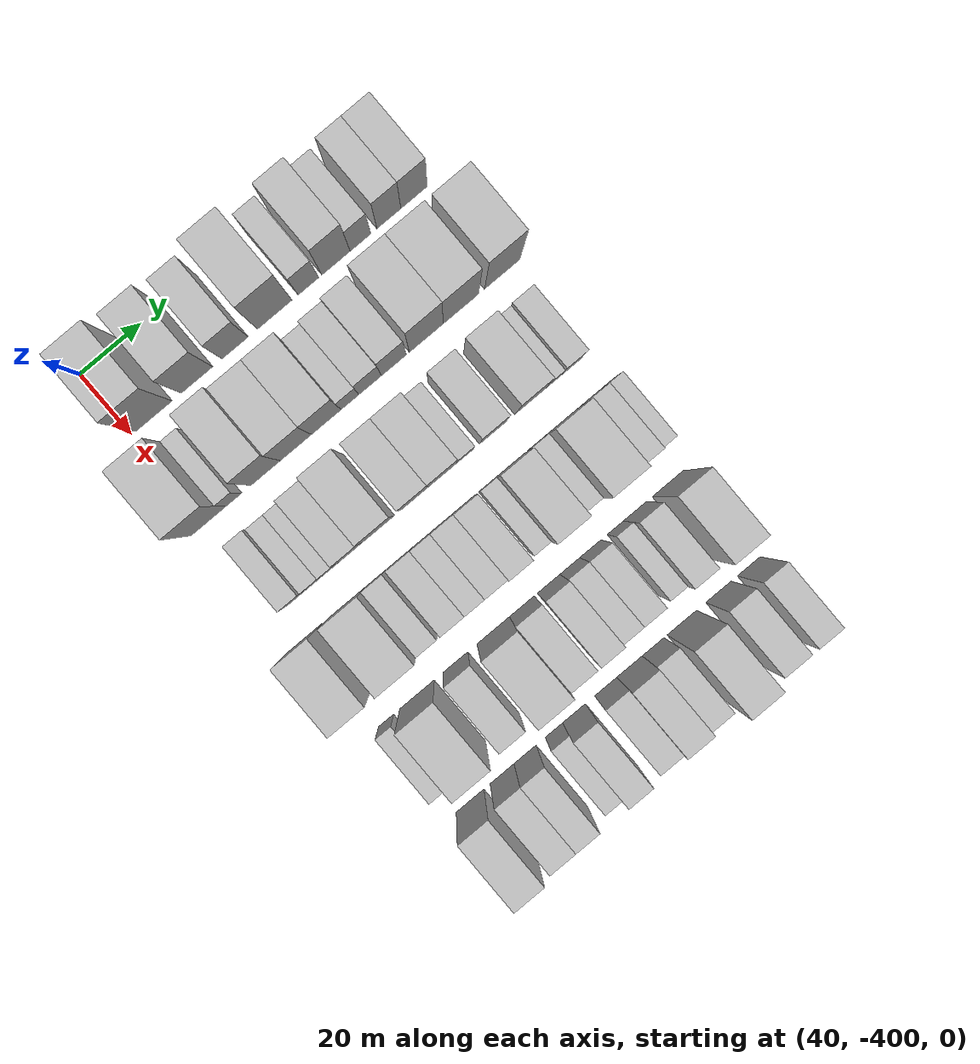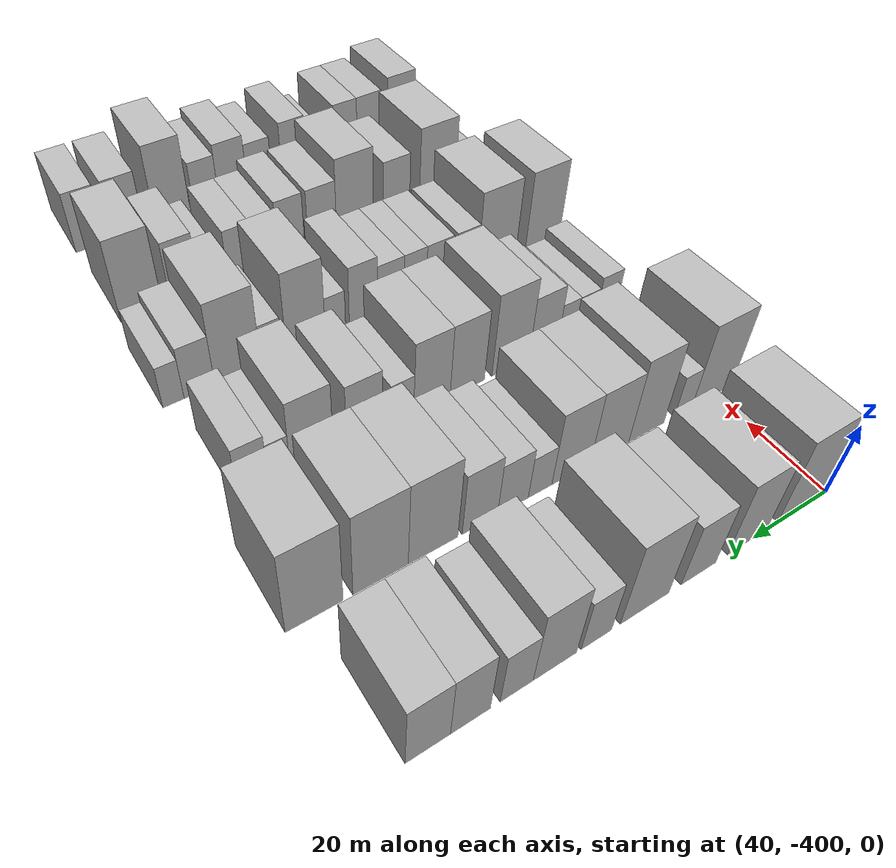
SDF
<sdf version="1.6">
 <world name="default">
  <model name="building_14">
   <static>1</static>
   <pose>50.0000 -392.5506 0 0.000000 0.000000 0.000000</pose>
   <link name="link">
    <pose>0 0 12.00 0 0 0</pose>
    <collision name="collision"><geometry><box><size>20.0000 11.9344 24.0000</size></box></geometry></collision>
    <visual name="visual">
     <cast_shadows>0</cast_shadows>
     <geometry><box><size>20.0000 11.9344 24.0000</size></box></geometry>
     <material>
      <script>
       <uri>model://HANNAS_wall/materials/scripts</uri>
       <uri>model://HANNAS_wall/materials/textures</uri>
       <name>vrc/HANNAS_wall</name>
      </script>
     </material>
    </visual>
   </link>
  </model>
  <model name="building_15">
   <static>1</static>
   <pose>50.0000 -378.4107 0 0.000000 0.000000 0.000000</pose>
   <link name="link">
    <pose>0 0 10.50 0 0 0</pose>
    <collision name="collision"><geometry><box><size>20.0000 10.3454 21.0000</size></box></geometry></collision>
    <visual name="visual">
     <cast_shadows>0</cast_shadows>
     <geometry><box><size>20.0000 10.3454 21.0000</size></box></geometry>
     <material>
      <script>
       <uri>model://HANNAS_wall/materials/scripts</uri>
       <uri>model://HANNAS_wall/materials/textures</uri>
       <name>vrc/HANNAS_wall</name>
      </script>
     </material>
    </visual>
   </link>
  </model>
  <model name="building_16">
   <static>1</static>
   <pose>50.0000 -365.9358 0 0.000000 0.000000 0.000000</pose>
   <link name="link">
    <pose>0 0 9.00 0 0 0</pose>
    <collision name="collision"><geometry><box><size>20.0000 8.6044 18.0000</size></box></geometry></collision>
    <visual name="visual">
     <cast_shadows>0</cast_shadows>
     <geometry><box><size>20.0000 8.6044 18.0000</size></box></geometry>
     <material>
      <script>
       <uri>model://HANNAS_wall/materials/scripts</uri>
       <uri>model://HANNAS_wall/materials/textures</uri>
       <name>vrc/HANNAS_wall</name>
      </script>
     </material>
    </visual>
   </link>
  </model>
  <model name="building_17">
   <static>1</static>
   <pose>50.0000 -352.9570 0 0.000000 0.000000 0.000000</pose>
   <link name="link">
    <pose>0 0 12.00 0 0 0</pose>
    <collision name="collision"><geometry><box><size>20.0000 11.3531 24.0000</size></box></geometry></collision>
    <visual name="visual">
     <cast_shadows>0</cast_shadows>
     <geometry><box><size>20.0000 11.3531 24.0000</size></box></geometry>
     <material>
      <script>
       <uri>model://HANNAS_wall/materials/scripts</uri>
       <uri>model://HANNAS_wall/materials/textures</uri>
       <name>vrc/HANNAS_wall</name>
      </script>
     </material>
    </visual>
   </link>
  </model>
  <model name="building_18">
   <static>1</static>
   <pose>50.0000 -341.8874 0 0.000000 0.000000 0.000000</pose>
   <link name="link">
    <pose>0 0 7.50 0 0 0</pose>
    <collision name="collision"><geometry><box><size>20.0000 6.7861 15.0000</size></box></geometry></collision>
    <visual name="visual">
     <cast_shadows>0</cast_shadows>
     <geometry><box><size>20.0000 6.7861 15.0000</size></box></geometry>
     <material>
      <script>
       <uri>model://HANNAS_wall/materials/scripts</uri>
       <uri>model://HANNAS_wall/materials/textures</uri>
       <name>vrc/HANNAS_wall</name>
      </script>
     </material>
    </visual>
   </link>
  </model>
  <model name="building_19">
   <static>1</static>
   <pose>50.0000 -332.8574 0 0.000000 0.000000 0.000000</pose>
   <link name="link">
    <pose>0 0 10.50 0 0 0</pose>
    <collision name="collision"><geometry><box><size>20.0000 9.2741 21.0000</size></box></geometry></collision>
    <visual name="visual">
     <cast_shadows>0</cast_shadows>
     <geometry><box><size>20.0000 9.2741 21.0000</size></box></geometry>
     <material>
      <script>
       <uri>model://HANNAS_wall/materials/scripts</uri>
       <uri>model://HANNAS_wall/materials/textures</uri>
       <name>vrc/HANNAS_wall</name>
      </script>
     </material>
    </visual>
   </link>
  </model>
  <model name="building_20">
   <static>1</static>
   <pose>50.0000 -324.8339 0 0.000000 0.000000 0.000000</pose>
   <link name="link">
    <pose>0 0 7.50 0 0 0</pose>
    <collision name="collision"><geometry><box><size>20.0000 6.7730 15.0000</size></box></geometry></collision>
    <visual name="visual">
     <cast_shadows>0</cast_shadows>
     <geometry><box><size>20.0000 6.7730 15.0000</size></box></geometry>
     <material>
      <script>
       <uri>model://HANNAS_wall/materials/scripts</uri>
       <uri>model://HANNAS_wall/materials/textures</uri>
       <name>vrc/HANNAS_wall</name>
      </script>
     </material>
    </visual>
   </link>
  </model>
  <model name="building_21">
   <static>1</static>
   <pose>50.0000 -315.5316 0 0.000000 0.000000 0.000000</pose>
   <link name="link">
    <pose>0 0 9.00 0 0 0</pose>
    <collision name="collision"><geometry><box><size>20.0000 7.8315 18.0000</size></box></geometry></collision>
    <visual name="visual">
     <cast_shadows>0</cast_shadows>
     <geometry><box><size>20.0000 7.8315 18.0000</size></box></geometry>
     <material>
      <script>
       <uri>model://HANNAS_wall/materials/scripts</uri>
       <uri>model://HANNAS_wall/materials/textures</uri>
       <name>vrc/HANNAS_wall</name>
      </script>
     </material>
    </visual>
   </link>
  </model>
  <model name="building_22">
   <static>1</static>
   <pose>50.0000 -307.3242 0 0.000000 0.000000 0.000000</pose>
   <link name="link">
    <pose>0 0 9.00 0 0 0</pose>
    <collision name="collision"><geometry><box><size>20.0000 8.5833 18.0000</size></box></geometry></collision>
    <visual name="visual">
     <cast_shadows>0</cast_shadows>
     <geometry><box><size>20.0000 8.5833 18.0000</size></box></geometry>
     <material>
      <script>
       <uri>model://HANNAS_wall/materials/scripts</uri>
       <uri>model://HANNAS_wall/materials/textures</uri>
       <name>vrc/HANNAS_wall</name>
      </script>
     </material>
    </visual>
   </link>
  </model>
  <model name="building_119">
   <static>1</static>
   <pose>79.0000 -398.9051 0 0.000000 0.000000 0.000000</pose>
   <link name="link">
    <pose>0 0 12.00 0 0 0</pose>
    <collision name="collision"><geometry><box><size>20.0000 11.6450 24.0000</size></box></geometry></collision>
    <visual name="visual">
     <cast_shadows>0</cast_shadows>
     <geometry><box><size>20.0000 11.6450 24.0000</size></box></geometry>
     <material>
      <script>
       <uri>model://HANNAS_wall/materials/scripts</uri>
       <uri>model://HANNAS_wall/materials/textures</uri>
       <name>vrc/HANNAS_wall</name>
      </script>
     </material>
    </visual>
   </link>
  </model>
  <model name="building_120">
   <static>1</static>
   <pose>79.0000 -390.5866 0 0.000000 0.000000 0.000000</pose>
   <link name="link">
    <pose>0 0 6.00 0 0 0</pose>
    <collision name="collision"><geometry><box><size>20.0000 4.9921 12.0000</size></box></geometry></collision>
    <visual name="visual">
     <cast_shadows>0</cast_shadows>
     <geometry><box><size>20.0000 4.9921 12.0000</size></box></geometry>
     <material>
      <script>
       <uri>model://HANNAS_wall/materials/scripts</uri>
       <uri>model://HANNAS_wall/materials/textures</uri>
       <name>vrc/HANNAS_wall</name>
      </script>
     </material>
    </visual>
   </link>
  </model>
  <model name="building_121">
   <static>1</static>
   <pose>79.0000 -380.2615 0 0.000000 0.000000 0.000000</pose>
   <link name="link">
    <pose>0 0 12.00 0 0 0</pose>
    <collision name="collision"><geometry><box><size>20.0000 9.6580 24.0000</size></box></geometry></collision>
    <visual name="visual">
     <cast_shadows>0</cast_shadows>
     <geometry><box><size>20.0000 9.6580 24.0000</size></box></geometry>
     <material>
      <script>
       <uri>model://HANNAS_wall/materials/scripts</uri>
       <uri>model://HANNAS_wall/materials/textures</uri>
       <name>vrc/HANNAS_wall</name>
      </script>
     </material>
    </visual>
   </link>
  </model>
  <model name="building_122">
   <static>1</static>
   <pose>79.0000 -370.3288 0 0.000000 0.000000 0.000000</pose>
   <link name="link">
    <pose>0 0 10.50 0 0 0</pose>
    <collision name="collision"><geometry><box><size>20.0000 10.2073 21.0000</size></box></geometry></collision>
    <visual name="visual">
     <cast_shadows>0</cast_shadows>
     <geometry><box><size>20.0000 10.2073 21.0000</size></box></geometry>
     <material>
      <script>
       <uri>model://HANNAS_wall/materials/scripts</uri>
       <uri>model://HANNAS_wall/materials/textures</uri>
       <name>vrc/HANNAS_wall</name>
      </script>
     </material>
    </visual>
   </link>
  </model>
  <model name="building_123">
   <static>1</static>
   <pose>79.0000 -360.3785 0 0.000000 0.000000 0.000000</pose>
   <link name="link">
    <pose>0 0 10.50 0 0 0</pose>
    <collision name="collision"><geometry><box><size>20.0000 9.6934 21.0000</size></box></geometry></collision>
    <visual name="visual">
     <cast_shadows>0</cast_shadows>
     <geometry><box><size>20.0000 9.6934 21.0000</size></box></geometry>
     <material>
      <script>
       <uri>model://HANNAS_wall/materials/scripts</uri>
       <uri>model://HANNAS_wall/materials/textures</uri>
       <name>vrc/HANNAS_wall</name>
      </script>
     </material>
    </visual>
   </link>
  </model>
  <model name="building_124">
   <static>1</static>
   <pose>79.0000 -352.6280 0 0.000000 0.000000 0.000000</pose>
   <link name="link">
    <pose>0 0 6.00 0 0 0</pose>
    <collision name="collision"><geometry><box><size>20.0000 5.8076 12.0000</size></box></geometry></collision>
    <visual name="visual">
     <cast_shadows>0</cast_shadows>
     <geometry><box><size>20.0000 5.8076 12.0000</size></box></geometry>
     <material>
      <script>
       <uri>model://HANNAS_wall/materials/scripts</uri>
       <uri>model://HANNAS_wall/materials/textures</uri>
       <name>vrc/HANNAS_wall</name>
      </script>
     </material>
    </visual>
   </link>
  </model>
  <model name="building_125">
   <static>1</static>
   <pose>79.0000 -346.0457 0 0.000000 0.000000 0.000000</pose>
   <link name="link">
    <pose>0 0 7.50 0 0 0</pose>
    <collision name="collision"><geometry><box><size>20.0000 7.3569 15.0000</size></box></geometry></collision>
    <visual name="visual">
     <cast_shadows>0</cast_shadows>
     <geometry><box><size>20.0000 7.3569 15.0000</size></box></geometry>
     <material>
      <script>
       <uri>model://HANNAS_wall/materials/scripts</uri>
       <uri>model://HANNAS_wall/materials/textures</uri>
       <name>vrc/HANNAS_wall</name>
      </script>
     </material>
    </visual>
   </link>
  </model>
  <model name="building_126">
   <static>1</static>
   <pose>79.0000 -338.2798 0 0.000000 0.000000 0.000000</pose>
   <link name="link">
    <pose>0 0 9.00 0 0 0</pose>
    <collision name="collision"><geometry><box><size>20.0000 8.1748 18.0000</size></box></geometry></collision>
    <visual name="visual">
     <cast_shadows>0</cast_shadows>
     <geometry><box><size>20.0000 8.1748 18.0000</size></box></geometry>
     <material>
      <script>
       <uri>model://HANNAS_wall/materials/scripts</uri>
       <uri>model://HANNAS_wall/materials/textures</uri>
       <name>vrc/HANNAS_wall</name>
      </script>
     </material>
    </visual>
   </link>
  </model>
  <model name="building_127">
   <static>1</static>
   <pose>79.0000 -327.7085 0 0.000000 0.000000 0.000000</pose>
   <link name="link">
    <pose>0 0 12.00 0 0 0</pose>
    <collision name="collision"><geometry><box><size>20.0000 10.9678 24.0000</size></box></geometry></collision>
    <visual name="visual">
     <cast_shadows>0</cast_shadows>
     <geometry><box><size>20.0000 10.9678 24.0000</size></box></geometry>
     <material>
      <script>
       <uri>model://HANNAS_wall/materials/scripts</uri>
       <uri>model://HANNAS_wall/materials/textures</uri>
       <name>vrc/HANNAS_wall</name>
      </script>
     </material>
    </visual>
   </link>
  </model>
  <model name="building_128">
   <static>1</static>
   <pose>79.0000 -316.3937 0 0.000000 0.000000 0.000000</pose>
   <link name="link">
    <pose>0 0 12.00 0 0 0</pose>
    <collision name="collision"><geometry><box><size>20.0000 11.6619 24.0000</size></box></geometry></collision>
    <visual name="visual">
     <cast_shadows>0</cast_shadows>
     <geometry><box><size>20.0000 11.6619 24.0000</size></box></geometry>
     <material>
      <script>
       <uri>model://HANNAS_wall/materials/scripts</uri>
       <uri>model://HANNAS_wall/materials/textures</uri>
       <name>vrc/HANNAS_wall</name>
      </script>
     </material>
    </visual>
   </link>
  </model>
  <model name="building_129">
   <static>1</static>
   <pose>79.0000 -302.7986 0 0.000000 0.000000 0.000000</pose>
   <link name="link">
    <pose>0 0 12.00 0 0 0</pose>
    <collision name="collision"><geometry><box><size>20.0000 11.5283 24.0000</size></box></geometry></collision>
    <visual name="visual">
     <cast_shadows>0</cast_shadows>
     <geometry><box><size>20.0000 11.5283 24.0000</size></box></geometry>
     <material>
      <script>
       <uri>model://HANNAS_wall/materials/scripts</uri>
       <uri>model://HANNAS_wall/materials/textures</uri>
       <name>vrc/HANNAS_wall</name>
      </script>
     </material>
    </visual>
   </link>
  </model>
  <model name="building_230">
   <static>1</static>
   <pose>108.0000 -394.1284 0 0.000000 0.000000 0.000000</pose>
   <link name="link">
    <pose>0 0 7.50 0 0 0</pose>
    <collision name="collision"><geometry><box><size>20.0000 6.0199 15.0000</size></box></geometry></collision>
    <visual name="visual">
     <cast_shadows>0</cast_shadows>
     <geometry><box><size>20.0000 6.0199 15.0000</size></box></geometry>
     <material>
      <script>
       <uri>model://HANNAS_wall/materials/scripts</uri>
       <uri>model://HANNAS_wall/materials/textures</uri>
       <name>vrc/HANNAS_wall</name>
      </script>
     </material>
    </visual>
   </link>
  </model>
  <model name="building_231">
   <static>1</static>
   <pose>108.0000 -388.3992 0 0.000000 0.000000 0.000000</pose>
   <link name="link">
    <pose>0 0 6.00 0 0 0</pose>
    <collision name="collision"><geometry><box><size>20.0000 5.4384 12.0000</size></box></geometry></collision>
    <visual name="visual">
     <cast_shadows>0</cast_shadows>
     <geometry><box><size>20.0000 5.4384 12.0000</size></box></geometry>
     <material>
      <script>
       <uri>model://HANNAS_wall/materials/scripts</uri>
       <uri>model://HANNAS_wall/materials/textures</uri>
       <name>vrc/HANNAS_wall</name>
      </script>
     </material>
    </visual>
   </link>
  </model>
  <model name="building_232">
   <static>1</static>
   <pose>108.0000 -383.0986 0 0.000000 0.000000 0.000000</pose>
   <link name="link">
    <pose>0 0 6.00 0 0 0</pose>
    <collision name="collision"><geometry><box><size>20.0000 5.1628 12.0000</size></box></geometry></collision>
    <visual name="visual">
     <cast_shadows>0</cast_shadows>
     <geometry><box><size>20.0000 5.1628 12.0000</size></box></geometry>
     <material>
      <script>
       <uri>model://HANNAS_wall/materials/scripts</uri>
       <uri>model://HANNAS_wall/materials/textures</uri>
       <name>vrc/HANNAS_wall</name>
      </script>
     </material>
    </visual>
   </link>
  </model>
  <model name="building_233">
   <static>1</static>
   <pose>108.0000 -376.4783 0 0.000000 0.000000 0.000000</pose>
   <link name="link">
    <pose>0 0 9.00 0 0 0</pose>
    <collision name="collision"><geometry><box><size>20.0000 8.0779 18.0000</size></box></geometry></collision>
    <visual name="visual">
     <cast_shadows>0</cast_shadows>
     <geometry><box><size>20.0000 8.0779 18.0000</size></box></geometry>
     <material>
      <script>
       <uri>model://HANNAS_wall/materials/scripts</uri>
       <uri>model://HANNAS_wall/materials/textures</uri>
       <name>vrc/HANNAS_wall</name>
      </script>
     </material>
    </visual>
   </link>
  </model>
  <model name="building_234">
   <static>1</static>
   <pose>108.0000 -367.3872 0 0.000000 0.000000 0.000000</pose>
   <link name="link">
    <pose>0 0 12.00 0 0 0</pose>
    <collision name="collision"><geometry><box><size>20.0000 10.1044 24.0000</size></box></geometry></collision>
    <visual name="visual">
     <cast_shadows>0</cast_shadows>
     <geometry><box><size>20.0000 10.1044 24.0000</size></box></geometry>
     <material>
      <script>
       <uri>model://HANNAS_wall/materials/scripts</uri>
       <uri>model://HANNAS_wall/materials/textures</uri>
       <name>vrc/HANNAS_wall</name>
      </script>
     </material>
    </visual>
   </link>
  </model>
  <model name="building_235">
   <static>1</static>
   <pose>108.0000 -355.8454 0 0.000000 0.000000 0.000000</pose>
   <link name="link">
    <pose>0 0 10.50 0 0 0</pose>
    <collision name="collision"><geometry><box><size>20.0000 8.9792 21.0000</size></box></geometry></collision>
    <visual name="visual">
     <cast_shadows>0</cast_shadows>
     <geometry><box><size>20.0000 8.9792 21.0000</size></box></geometry>
     <material>
      <script>
       <uri>model://HANNAS_wall/materials/scripts</uri>
       <uri>model://HANNAS_wall/materials/textures</uri>
       <name>vrc/HANNAS_wall</name>
      </script>
     </material>
    </visual>
   </link>
  </model>
  <model name="building_236">
   <static>1</static>
   <pose>108.0000 -346.7519 0 0.000000 0.000000 0.000000</pose>
   <link name="link">
    <pose>0 0 10.50 0 0 0</pose>
    <collision name="collision"><geometry><box><size>20.0000 9.2078 21.0000</size></box></geometry></collision>
    <visual name="visual">
     <cast_shadows>0</cast_shadows>
     <geometry><box><size>20.0000 9.2078 21.0000</size></box></geometry>
     <material>
      <script>
       <uri>model://HANNAS_wall/materials/scripts</uri>
       <uri>model://HANNAS_wall/materials/textures</uri>
       <name>vrc/HANNAS_wall</name>
      </script>
     </material>
    </visual>
   </link>
  </model>
  <model name="building_237">
   <static>1</static>
   <pose>108.0000 -339.3486 0 0.000000 0.000000 0.000000</pose>
   <link name="link">
    <pose>0 0 6.00 0 0 0</pose>
    <collision name="collision"><geometry><box><size>20.0000 5.5988 12.0000</size></box></geometry></collision>
    <visual name="visual">
     <cast_shadows>0</cast_shadows>
     <geometry><box><size>20.0000 5.5988 12.0000</size></box></geometry>
     <material>
      <script>
       <uri>model://HANNAS_wall/materials/scripts</uri>
       <uri>model://HANNAS_wall/materials/textures</uri>
       <name>vrc/HANNAS_wall</name>
      </script>
     </material>
    </visual>
   </link>
  </model>
  <model name="building_238">
   <static>1</static>
   <pose>108.0000 -330.2804 0 0.000000 0.000000 0.000000</pose>
   <link name="link">
    <pose>0 0 9.00 0 0 0</pose>
    <collision name="collision"><geometry><box><size>20.0000 8.5376 18.0000</size></box></geometry></collision>
    <visual name="visual">
     <cast_shadows>0</cast_shadows>
     <geometry><box><size>20.0000 8.5376 18.0000</size></box></geometry>
     <material>
      <script>
       <uri>model://HANNAS_wall/materials/scripts</uri>
       <uri>model://HANNAS_wall/materials/textures</uri>
       <name>vrc/HANNAS_wall</name>
      </script>
     </material>
    </visual>
   </link>
  </model>
  <model name="building_239">
   <static>1</static>
   <pose>108.0000 -318.1459 0 0.000000 0.000000 0.000000</pose>
   <link name="link">
    <pose>0 0 10.50 0 0 0</pose>
    <collision name="collision"><geometry><box><size>20.0000 9.7313 21.0000</size></box></geometry></collision>
    <visual name="visual">
     <cast_shadows>0</cast_shadows>
     <geometry><box><size>20.0000 9.7313 21.0000</size></box></geometry>
     <material>
      <script>
       <uri>model://HANNAS_wall/materials/scripts</uri>
       <uri>model://HANNAS_wall/materials/textures</uri>
       <name>vrc/HANNAS_wall</name>
      </script>
     </material>
    </visual>
   </link>
  </model>
  <model name="building_240">
   <static>1</static>
   <pose>108.0000 -310.8722 0 0.000000 0.000000 0.000000</pose>
   <link name="link">
    <pose>0 0 6.00 0 0 0</pose>
    <collision name="collision"><geometry><box><size>20.0000 4.8162 12.0000</size></box></geometry></collision>
    <visual name="visual">
     <cast_shadows>0</cast_shadows>
     <geometry><box><size>20.0000 4.8162 12.0000</size></box></geometry>
     <material>
      <script>
       <uri>model://HANNAS_wall/materials/scripts</uri>
       <uri>model://HANNAS_wall/materials/textures</uri>
       <name>vrc/HANNAS_wall</name>
      </script>
     </material>
    </visual>
   </link>
  </model>
  <model name="building_241">
   <static>1</static>
   <pose>108.0000 -305.1281 0 0.000000 0.000000 0.000000</pose>
   <link name="link">
    <pose>0 0 7.50 0 0 0</pose>
    <collision name="collision"><geometry><box><size>20.0000 6.6720 15.0000</size></box></geometry></collision>
    <visual name="visual">
     <cast_shadows>0</cast_shadows>
     <geometry><box><size>20.0000 6.6720 15.0000</size></box></geometry>
     <material>
      <script>
       <uri>model://HANNAS_wall/materials/scripts</uri>
       <uri>model://HANNAS_wall/materials/textures</uri>
       <name>vrc/HANNAS_wall</name>
      </script>
     </material>
    </visual>
   </link>
  </model>
  <model name="building_341">
   <static>1</static>
   <pose>137.0000 -399.1866 0 0.000000 0.000000 0.000000</pose>
   <link name="link">
    <pose>0 0 12.00 0 0 0</pose>
    <collision name="collision"><geometry><box><size>20.0000 10.7798 24.0000</size></box></geometry></collision>
    <visual name="visual">
     <cast_shadows>0</cast_shadows>
     <geometry><box><size>20.0000 10.7798 24.0000</size></box></geometry>
     <material>
      <script>
       <uri>model://HANNAS_wall/materials/scripts</uri>
       <uri>model://HANNAS_wall/materials/textures</uri>
       <name>vrc/HANNAS_wall</name>
      </script>
     </material>
    </visual>
   </link>
  </model>
  <model name="building_342">
   <static>1</static>
   <pose>137.0000 -385.0255 0 0.000000 0.000000 0.000000</pose>
   <link name="link">
    <pose>0 0 12.00 0 0 0</pose>
    <collision name="collision"><geometry><box><size>20.0000 11.5424 24.0000</size></box></geometry></collision>
    <visual name="visual">
     <cast_shadows>0</cast_shadows>
     <geometry><box><size>20.0000 11.5424 24.0000</size></box></geometry>
     <material>
      <script>
       <uri>model://HANNAS_wall/materials/scripts</uri>
       <uri>model://HANNAS_wall/materials/textures</uri>
       <name>vrc/HANNAS_wall</name>
      </script>
     </material>
    </visual>
   </link>
  </model>
  <model name="building_343">
   <static>1</static>
   <pose>137.0000 -376.0339 0 0.000000 0.000000 0.000000</pose>
   <link name="link">
    <pose>0 0 7.50 0 0 0</pose>
    <collision name="collision"><geometry><box><size>20.0000 6.4409 15.0000</size></box></geometry></collision>
    <visual name="visual">
     <cast_shadows>0</cast_shadows>
     <geometry><box><size>20.0000 6.4409 15.0000</size></box></geometry>
     <material>
      <script>
       <uri>model://HANNAS_wall/materials/scripts</uri>
       <uri>model://HANNAS_wall/materials/textures</uri>
       <name>vrc/HANNAS_wall</name>
      </script>
     </material>
    </visual>
   </link>
  </model>
  <model name="building_344">
   <static>1</static>
   <pose>137.0000 -368.0827 0 0.000000 0.000000 0.000000</pose>
   <link name="link">
    <pose>0 0 7.50 0 0 0</pose>
    <collision name="collision"><geometry><box><size>20.0000 7.4615 15.0000</size></box></geometry></collision>
    <visual name="visual">
     <cast_shadows>0</cast_shadows>
     <geometry><box><size>20.0000 7.4615 15.0000</size></box></geometry>
     <material>
      <script>
       <uri>model://HANNAS_wall/materials/scripts</uri>
       <uri>model://HANNAS_wall/materials/textures</uri>
       <name>vrc/HANNAS_wall</name>
      </script>
     </material>
    </visual>
   </link>
  </model>
  <model name="building_345">
   <static>1</static>
   <pose>137.0000 -361.2381 0 0.000000 0.000000 0.000000</pose>
   <link name="link">
    <pose>0 0 7.50 0 0 0</pose>
    <collision name="collision"><geometry><box><size>20.0000 6.2277 15.0000</size></box></geometry></collision>
    <visual name="visual">
     <cast_shadows>0</cast_shadows>
     <geometry><box><size>20.0000 6.2277 15.0000</size></box></geometry>
     <material>
      <script>
       <uri>model://HANNAS_wall/materials/scripts</uri>
       <uri>model://HANNAS_wall/materials/textures</uri>
       <name>vrc/HANNAS_wall</name>
      </script>
     </material>
    </visual>
   </link>
  </model>
  <model name="building_346">
   <static>1</static>
   <pose>137.0000 -354.5457 0 0.000000 0.000000 0.000000</pose>
   <link name="link">
    <pose>0 0 7.50 0 0 0</pose>
    <collision name="collision"><geometry><box><size>20.0000 7.1572 15.0000</size></box></geometry></collision>
    <visual name="visual">
     <cast_shadows>0</cast_shadows>
     <geometry><box><size>20.0000 7.1572 15.0000</size></box></geometry>
     <material>
      <script>
       <uri>model://HANNAS_wall/materials/scripts</uri>
       <uri>model://HANNAS_wall/materials/textures</uri>
       <name>vrc/HANNAS_wall</name>
      </script>
     </material>
    </visual>
   </link>
  </model>
  <model name="building_347">
   <static>1</static>
   <pose>137.0000 -347.2241 0 0.000000 0.000000 0.000000</pose>
   <link name="link">
    <pose>0 0 9.00 0 0 0</pose>
    <collision name="collision"><geometry><box><size>20.0000 7.4860 18.0000</size></box></geometry></collision>
    <visual name="visual">
     <cast_shadows>0</cast_shadows>
     <geometry><box><size>20.0000 7.4860 18.0000</size></box></geometry>
     <material>
      <script>
       <uri>model://HANNAS_wall/materials/scripts</uri>
       <uri>model://HANNAS_wall/materials/textures</uri>
       <name>vrc/HANNAS_wall</name>
      </script>
     </material>
    </visual>
   </link>
  </model>
  <model name="building_348">
   <static>1</static>
   <pose>137.0000 -339.8704 0 0.000000 0.000000 0.000000</pose>
   <link name="link">
    <pose>0 0 6.00 0 0 0</pose>
    <collision name="collision"><geometry><box><size>20.0000 5.2214 12.0000</size></box></geometry></collision>
    <visual name="visual">
     <cast_shadows>0</cast_shadows>
     <geometry><box><size>20.0000 5.2214 12.0000</size></box></geometry>
     <material>
      <script>
       <uri>model://HANNAS_wall/materials/scripts</uri>
       <uri>model://HANNAS_wall/materials/textures</uri>
       <name>vrc/HANNAS_wall</name>
      </script>
     </material>
    </visual>
   </link>
  </model>
  <model name="building_349">
   <static>1</static>
   <pose>137.0000 -332.3220 0 0.000000 0.000000 0.000000</pose>
   <link name="link">
    <pose>0 0 12.00 0 0 0</pose>
    <collision name="collision"><geometry><box><size>20.0000 9.8754 24.0000</size></box></geometry></collision>
    <visual name="visual">
     <cast_shadows>0</cast_shadows>
     <geometry><box><size>20.0000 9.8754 24.0000</size></box></geometry>
     <material>
      <script>
       <uri>model://HANNAS_wall/materials/scripts</uri>
       <uri>model://HANNAS_wall/materials/textures</uri>
       <name>vrc/HANNAS_wall</name>
      </script>
     </material>
    </visual>
   </link>
  </model>
  <model name="building_350">
   <static>1</static>
   <pose>137.0000 -323.7280 0 0.000000 0.000000 0.000000</pose>
   <link name="link">
    <pose>0 0 6.00 0 0 0</pose>
    <collision name="collision"><geometry><box><size>20.0000 5.3126 12.0000</size></box></geometry></collision>
    <visual name="visual">
     <cast_shadows>0</cast_shadows>
     <geometry><box><size>20.0000 5.3126 12.0000</size></box></geometry>
     <material>
      <script>
       <uri>model://HANNAS_wall/materials/scripts</uri>
       <uri>model://HANNAS_wall/materials/textures</uri>
       <name>vrc/HANNAS_wall</name>
      </script>
     </material>
    </visual>
   </link>
  </model>
  <model name="building_351">
   <static>1</static>
   <pose>137.0000 -315.5828 0 0.000000 0.000000 0.000000</pose>
   <link name="link">
    <pose>0 0 12.00 0 0 0</pose>
    <collision name="collision"><geometry><box><size>20.0000 10.9778 24.0000</size></box></geometry></collision>
    <visual name="visual">
     <cast_shadows>0</cast_shadows>
     <geometry><box><size>20.0000 10.9778 24.0000</size></box></geometry>
     <material>
      <script>
       <uri>model://HANNAS_wall/materials/scripts</uri>
       <uri>model://HANNAS_wall/materials/textures</uri>
       <name>vrc/HANNAS_wall</name>
      </script>
     </material>
    </visual>
   </link>
  </model>
  <model name="building_352">
   <static>1</static>
   <pose>137.0000 -306.5352 0 0.000000 0.000000 0.000000</pose>
   <link name="link">
    <pose>0 0 7.50 0 0 0</pose>
    <collision name="collision"><geometry><box><size>20.0000 7.1174 15.0000</size></box></geometry></collision>
    <visual name="visual">
     <cast_shadows>0</cast_shadows>
     <geometry><box><size>20.0000 7.1174 15.0000</size></box></geometry>
     <material>
      <script>
       <uri>model://HANNAS_wall/materials/scripts</uri>
       <uri>model://HANNAS_wall/materials/textures</uri>
       <name>vrc/HANNAS_wall</name>
      </script>
     </material>
    </visual>
   </link>
  </model>
  <model name="building_353">
   <static>1</static>
   <pose>137.0000 -300.5645 0 0.000000 0.000000 0.000000</pose>
   <link name="link">
    <pose>0 0 6.00 0 0 0</pose>
    <collision name="collision"><geometry><box><size>20.0000 4.8240 12.0000</size></box></geometry></collision>
    <visual name="visual">
     <cast_shadows>0</cast_shadows>
     <geometry><box><size>20.0000 4.8240 12.0000</size></box></geometry>
     <material>
      <script>
       <uri>model://HANNAS_wall/materials/scripts</uri>
       <uri>model://HANNAS_wall/materials/textures</uri>
       <name>vrc/HANNAS_wall</name>
      </script>
     </material>
    </visual>
   </link>
  </model>
  <model name="building_458">
   <static>1</static>
   <pose>166.0000 -397.1398 0 0.000000 0.000000 0.000000</pose>
   <link name="link">
    <pose>0 0 6.00 0 0 0</pose>
    <collision name="collision"><geometry><box><size>20.0000 4.9072 12.0000</size></box></geometry></collision>
    <visual name="visual">
     <cast_shadows>0</cast_shadows>
     <geometry><box><size>20.0000 4.9072 12.0000</size></box></geometry>
     <material>
      <script>
       <uri>model://HANNAS_wall/materials/scripts</uri>
       <uri>model://HANNAS_wall/materials/textures</uri>
       <name>vrc/HANNAS_wall</name>
      </script>
     </material>
    </visual>
   </link>
  </model>
  <model name="building_459">
   <static>1</static>
   <pose>166.0000 -387.0199 0 0.000000 0.000000 0.000000</pose>
   <link name="link">
    <pose>0 0 12.00 0 0 0</pose>
    <collision name="collision"><geometry><box><size>20.0000 11.3327 24.0000</size></box></geometry></collision>
    <visual name="visual">
     <cast_shadows>0</cast_shadows>
     <geometry><box><size>20.0000 11.3327 24.0000</size></box></geometry>
     <material>
      <script>
       <uri>model://HANNAS_wall/materials/scripts</uri>
       <uri>model://HANNAS_wall/materials/textures</uri>
       <name>vrc/HANNAS_wall</name>
      </script>
     </material>
    </visual>
   </link>
  </model>
  <model name="building_460">
   <static>1</static>
   <pose>166.0000 -374.3533 0 0.000000 0.000000 0.000000</pose>
   <link name="link">
    <pose>0 0 9.00 0 0 0</pose>
    <collision name="collision"><geometry><box><size>20.0000 8.0005 18.0000</size></box></geometry></collision>
    <visual name="visual">
     <cast_shadows>0</cast_shadows>
     <geometry><box><size>20.0000 8.0005 18.0000</size></box></geometry>
     <material>
      <script>
       <uri>model://HANNAS_wall/materials/scripts</uri>
       <uri>model://HANNAS_wall/materials/textures</uri>
       <name>vrc/HANNAS_wall</name>
      </script>
     </material>
    </visual>
   </link>
  </model>
  <model name="building_461">
   <static>1</static>
   <pose>166.0000 -362.0020 0 0.000000 0.000000 0.000000</pose>
   <link name="link">
    <pose>0 0 12.00 0 0 0</pose>
    <collision name="collision"><geometry><box><size>20.0000 10.7020 24.0000</size></box></geometry></collision>
    <visual name="visual">
     <cast_shadows>0</cast_shadows>
     <geometry><box><size>20.0000 10.7020 24.0000</size></box></geometry>
     <material>
      <script>
       <uri>model://HANNAS_wall/materials/scripts</uri>
       <uri>model://HANNAS_wall/materials/textures</uri>
       <name>vrc/HANNAS_wall</name>
      </script>
     </material>
    </visual>
   </link>
  </model>
  <model name="building_462">
   <static>1</static>
   <pose>166.0000 -352.6066 0 0.000000 0.000000 0.000000</pose>
   <link name="link">
    <pose>0 0 9.00 0 0 0</pose>
    <collision name="collision"><geometry><box><size>20.0000 8.0889 18.0000</size></box></geometry></collision>
    <visual name="visual">
     <cast_shadows>0</cast_shadows>
     <geometry><box><size>20.0000 8.0889 18.0000</size></box></geometry>
     <material>
      <script>
       <uri>model://HANNAS_wall/materials/scripts</uri>
       <uri>model://HANNAS_wall/materials/textures</uri>
       <name>vrc/HANNAS_wall</name>
      </script>
     </material>
    </visual>
   </link>
  </model>
  <model name="building_463">
   <static>1</static>
   <pose>166.0000 -343.8611 0 0.000000 0.000000 0.000000</pose>
   <link name="link">
    <pose>0 0 9.00 0 0 0</pose>
    <collision name="collision"><geometry><box><size>20.0000 7.4020 18.0000</size></box></geometry></collision>
    <visual name="visual">
     <cast_shadows>0</cast_shadows>
     <geometry><box><size>20.0000 7.4020 18.0000</size></box></geometry>
     <material>
      <script>
       <uri>model://HANNAS_wall/materials/scripts</uri>
       <uri>model://HANNAS_wall/materials/textures</uri>
       <name>vrc/HANNAS_wall</name>
      </script>
     </material>
    </visual>
   </link>
  </model>
  <model name="building_464">
   <static>1</static>
   <pose>166.0000 -336.8912 0 0.000000 0.000000 0.000000</pose>
   <link name="link">
    <pose>0 0 7.50 0 0 0</pose>
    <collision name="collision"><geometry><box><size>20.0000 6.5378 15.0000</size></box></geometry></collision>
    <visual name="visual">
     <cast_shadows>0</cast_shadows>
     <geometry><box><size>20.0000 6.5378 15.0000</size></box></geometry>
     <material>
      <script>
       <uri>model://HANNAS_wall/materials/scripts</uri>
       <uri>model://HANNAS_wall/materials/textures</uri>
       <name>vrc/HANNAS_wall</name>
      </script>
     </material>
    </visual>
   </link>
  </model>
  <model name="building_465">
   <static>1</static>
   <pose>166.0000 -330.1317 0 0.000000 0.000000 0.000000</pose>
   <link name="link">
    <pose>0 0 7.50 0 0 0</pose>
    <collision name="collision"><geometry><box><size>20.0000 6.9814 15.0000</size></box></geometry></collision>
    <visual name="visual">
     <cast_shadows>0</cast_shadows>
     <geometry><box><size>20.0000 6.9814 15.0000</size></box></geometry>
     <material>
      <script>
       <uri>model://HANNAS_wall/materials/scripts</uri>
       <uri>model://HANNAS_wall/materials/textures</uri>
       <name>vrc/HANNAS_wall</name>
      </script>
     </material>
    </visual>
   </link>
  </model>
  <model name="building_466">
   <static>1</static>
   <pose>166.0000 -321.9707 0 0.000000 0.000000 0.000000</pose>
   <link name="link">
    <pose>0 0 6.00 0 0 0</pose>
    <collision name="collision"><geometry><box><size>20.0000 5.3405 12.0000</size></box></geometry></collision>
    <visual name="visual">
     <cast_shadows>0</cast_shadows>
     <geometry><box><size>20.0000 5.3405 12.0000</size></box></geometry>
     <material>
      <script>
       <uri>model://HANNAS_wall/materials/scripts</uri>
       <uri>model://HANNAS_wall/materials/textures</uri>
       <name>vrc/HANNAS_wall</name>
      </script>
     </material>
    </visual>
   </link>
  </model>
  <model name="building_467">
   <static>1</static>
   <pose>166.0000 -315.5801 0 0.000000 0.000000 0.000000</pose>
   <link name="link">
    <pose>0 0 9.00 0 0 0</pose>
    <collision name="collision"><geometry><box><size>20.0000 7.4407 18.0000</size></box></geometry></collision>
    <visual name="visual">
     <cast_shadows>0</cast_shadows>
     <geometry><box><size>20.0000 7.4407 18.0000</size></box></geometry>
     <material>
      <script>
       <uri>model://HANNAS_wall/materials/scripts</uri>
       <uri>model://HANNAS_wall/materials/textures</uri>
       <name>vrc/HANNAS_wall</name>
      </script>
     </material>
    </visual>
   </link>
  </model>
  <model name="building_468">
   <static>1</static>
   <pose>166.0000 -304.7404 0 0.000000 0.000000 0.000000</pose>
   <link name="link">
    <pose>0 0 12.00 0 0 0</pose>
    <collision name="collision"><geometry><box><size>20.0000 10.2387 24.0000</size></box></geometry></collision>
    <visual name="visual">
     <cast_shadows>0</cast_shadows>
     <geometry><box><size>20.0000 10.2387 24.0000</size></box></geometry>
     <material>
      <script>
       <uri>model://HANNAS_wall/materials/scripts</uri>
       <uri>model://HANNAS_wall/materials/textures</uri>
       <name>vrc/HANNAS_wall</name>
      </script>
     </material>
    </visual>
   </link>
  </model>
  <model name="building_576">
   <static>1</static>
   <pose>195.0000 -394.0129 0 0.000000 0.000000 0.000000</pose>
   <link name="link">
    <pose>0 0 10.50 0 0 0</pose>
    <collision name="collision"><geometry><box><size>20.0000 9.1226 21.0000</size></box></geometry></collision>
    <visual name="visual">
     <cast_shadows>0</cast_shadows>
     <geometry><box><size>20.0000 9.1226 21.0000</size></box></geometry>
     <material>
      <script>
       <uri>model://HANNAS_wall/materials/scripts</uri>
       <uri>model://HANNAS_wall/materials/textures</uri>
       <name>vrc/HANNAS_wall</name>
      </script>
     </material>
    </visual>
   </link>
  </model>
  <model name="building_577">
   <static>1</static>
   <pose>195.0000 -383.5394 0 0.000000 0.000000 0.000000</pose>
   <link name="link">
    <pose>0 0 9.00 0 0 0</pose>
    <collision name="collision"><geometry><box><size>20.0000 7.8245 18.0000</size></box></geometry></collision>
    <visual name="visual">
     <cast_shadows>0</cast_shadows>
     <geometry><box><size>20.0000 7.8245 18.0000</size></box></geometry>
     <material>
      <script>
       <uri>model://HANNAS_wall/materials/scripts</uri>
       <uri>model://HANNAS_wall/materials/textures</uri>
       <name>vrc/HANNAS_wall</name>
      </script>
     </material>
    </visual>
   </link>
  </model>
  <model name="building_578">
   <static>1</static>
   <pose>195.0000 -375.9768 0 0.000000 0.000000 0.000000</pose>
   <link name="link">
    <pose>0 0 9.00 0 0 0</pose>
    <collision name="collision"><geometry><box><size>20.0000 7.3006 18.0000</size></box></geometry></collision>
    <visual name="visual">
     <cast_shadows>0</cast_shadows>
     <geometry><box><size>20.0000 7.3006 18.0000</size></box></geometry>
     <material>
      <script>
       <uri>model://HANNAS_wall/materials/scripts</uri>
       <uri>model://HANNAS_wall/materials/textures</uri>
       <name>vrc/HANNAS_wall</name>
      </script>
     </material>
    </visual>
   </link>
  </model>
  <model name="building_579">
   <static>1</static>
   <pose>195.0000 -366.4805 0 0.000000 0.000000 0.000000</pose>
   <link name="link">
    <pose>0 0 6.00 0 0 0</pose>
    <collision name="collision"><geometry><box><size>20.0000 5.6921 12.0000</size></box></geometry></collision>
    <visual name="visual">
     <cast_shadows>0</cast_shadows>
     <geometry><box><size>20.0000 5.6921 12.0000</size></box></geometry>
     <material>
      <script>
       <uri>model://HANNAS_wall/materials/scripts</uri>
       <uri>model://HANNAS_wall/materials/textures</uri>
       <name>vrc/HANNAS_wall</name>
      </script>
     </material>
    </visual>
   </link>
  </model>
  <model name="building_580">
   <static>1</static>
   <pose>195.0000 -359.8817 0 0.000000 0.000000 0.000000</pose>
   <link name="link">
    <pose>0 0 9.00 0 0 0</pose>
    <collision name="collision"><geometry><box><size>20.0000 7.5054 18.0000</size></box></geometry></collision>
    <visual name="visual">
     <cast_shadows>0</cast_shadows>
     <geometry><box><size>20.0000 7.5054 18.0000</size></box></geometry>
     <material>
      <script>
       <uri>model://HANNAS_wall/materials/scripts</uri>
       <uri>model://HANNAS_wall/materials/textures</uri>
       <name>vrc/HANNAS_wall</name>
      </script>
     </material>
    </visual>
   </link>
  </model>
  <model name="building_581">
   <static>1</static>
   <pose>195.0000 -349.4767 0 0.000000 0.000000 0.000000</pose>
   <link name="link">
    <pose>0 0 7.50 0 0 0</pose>
    <collision name="collision"><geometry><box><size>20.0000 7.3048 15.0000</size></box></geometry></collision>
    <visual name="visual">
     <cast_shadows>0</cast_shadows>
     <geometry><box><size>20.0000 7.3048 15.0000</size></box></geometry>
     <material>
      <script>
       <uri>model://HANNAS_wall/materials/scripts</uri>
       <uri>model://HANNAS_wall/materials/textures</uri>
       <name>vrc/HANNAS_wall</name>
      </script>
     </material>
    </visual>
   </link>
  </model>
  <model name="building_582">
   <static>1</static>
   <pose>195.0000 -341.6586 0 0.000000 0.000000 0.000000</pose>
   <link name="link">
    <pose>0 0 9.00 0 0 0</pose>
    <collision name="collision"><geometry><box><size>20.0000 8.3313 18.0000</size></box></geometry></collision>
    <visual name="visual">
     <cast_shadows>0</cast_shadows>
     <geometry><box><size>20.0000 8.3313 18.0000</size></box></geometry>
     <material>
      <script>
       <uri>model://HANNAS_wall/materials/scripts</uri>
       <uri>model://HANNAS_wall/materials/textures</uri>
       <name>vrc/HANNAS_wall</name>
      </script>
     </material>
    </visual>
   </link>
  </model>
  <model name="building_583">
   <static>1</static>
   <pose>195.0000 -333.9230 0 0.000000 0.000000 0.000000</pose>
   <link name="link">
    <pose>0 0 7.50 0 0 0</pose>
    <collision name="collision"><geometry><box><size>20.0000 7.1399 15.0000</size></box></geometry></collision>
    <visual name="visual">
     <cast_shadows>0</cast_shadows>
     <geometry><box><size>20.0000 7.1399 15.0000</size></box></geometry>
     <material>
      <script>
       <uri>model://HANNAS_wall/materials/scripts</uri>
       <uri>model://HANNAS_wall/materials/textures</uri>
       <name>vrc/HANNAS_wall</name>
      </script>
     </material>
    </visual>
   </link>
  </model>
  <model name="building_584">
   <static>1</static>
   <pose>195.0000 -324.5136 0 0.000000 0.000000 0.000000</pose>
   <link name="link">
    <pose>0 0 12.00 0 0 0</pose>
    <collision name="collision"><geometry><box><size>20.0000 9.6788 24.0000</size></box></geometry></collision>
    <visual name="visual">
     <cast_shadows>0</cast_shadows>
     <geometry><box><size>20.0000 9.6788 24.0000</size></box></geometry>
     <material>
      <script>
       <uri>model://HANNAS_wall/materials/scripts</uri>
       <uri>model://HANNAS_wall/materials/textures</uri>
       <name>vrc/HANNAS_wall</name>
      </script>
     </material>
    </visual>
   </link>
  </model>
  <model name="building_585">
   <static>1</static>
   <pose>195.0000 -312.4834 0 0.000000 0.000000 0.000000</pose>
   <link name="link">
    <pose>0 0 9.00 0 0 0</pose>
    <collision name="collision"><geometry><box><size>20.0000 8.3817 18.0000</size></box></geometry></collision>
    <visual name="visual">
     <cast_shadows>0</cast_shadows>
     <geometry><box><size>20.0000 8.3817 18.0000</size></box></geometry>
     <material>
      <script>
       <uri>model://HANNAS_wall/materials/scripts</uri>
       <uri>model://HANNAS_wall/materials/textures</uri>
       <name>vrc/HANNAS_wall</name>
      </script>
     </material>
    </visual>
   </link>
  </model>
  <model name="building_586">
   <static>1</static>
   <pose>195.0000 -302.5234 0 0.000000 0.000000 0.000000</pose>
   <link name="link">
    <pose>0 0 9.00 0 0 0</pose>
    <collision name="collision"><geometry><box><size>20.0000 7.5382 18.0000</size></box></geometry></collision>
    <visual name="visual">
     <cast_shadows>0</cast_shadows>
     <geometry><box><size>20.0000 7.5382 18.0000</size></box></geometry>
     <material>
      <script>
       <uri>model://HANNAS_wall/materials/scripts</uri>
       <uri>model://HANNAS_wall/materials/textures</uri>
       <name>vrc/HANNAS_wall</name>
      </script>
     </material>
    </visual>
   </link>
  </model>
 </world>
</sdf>
